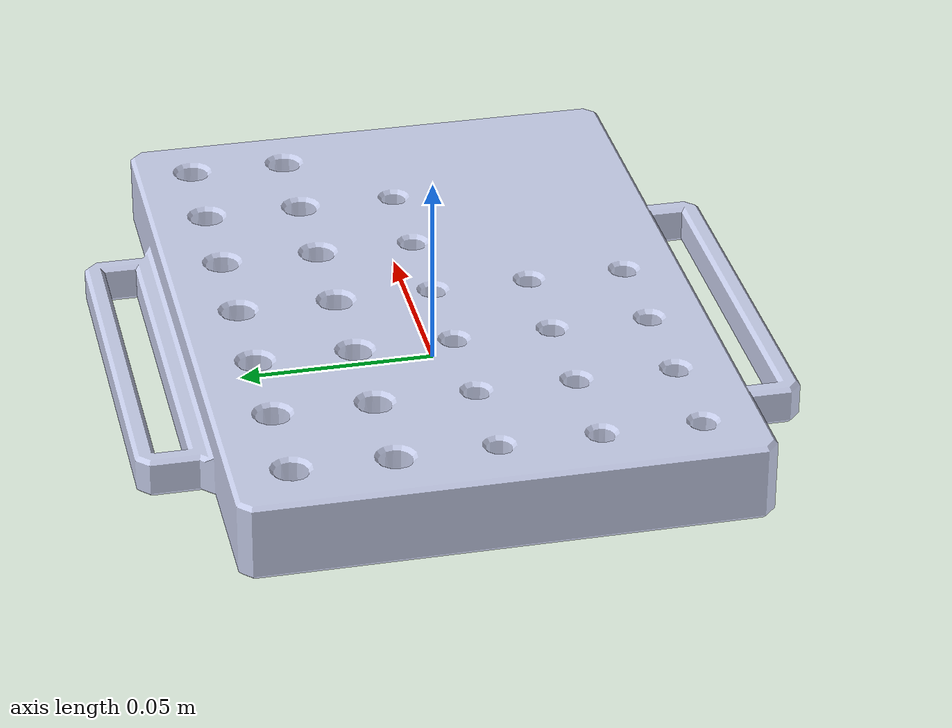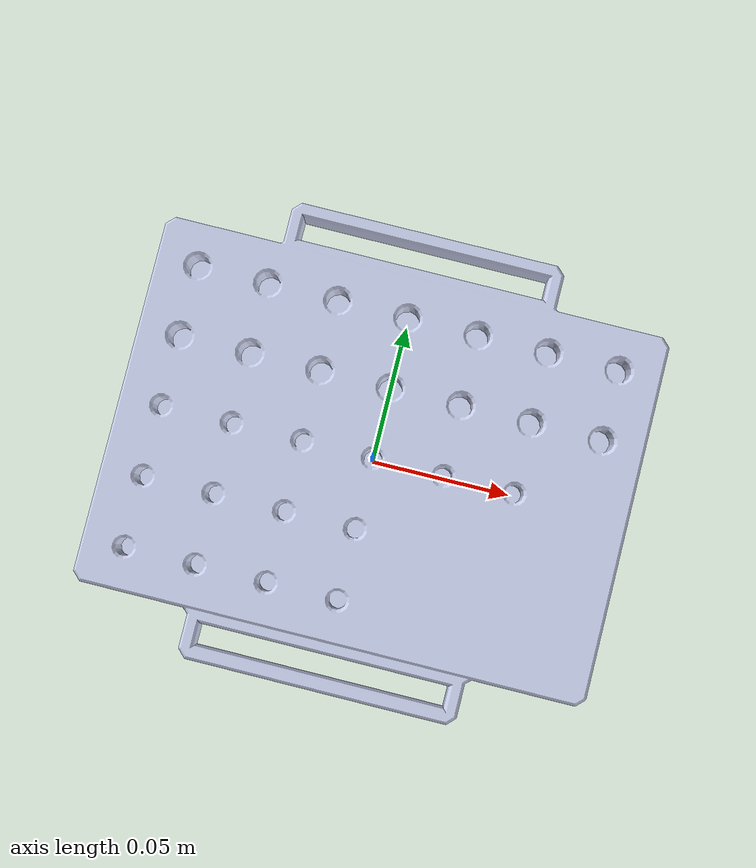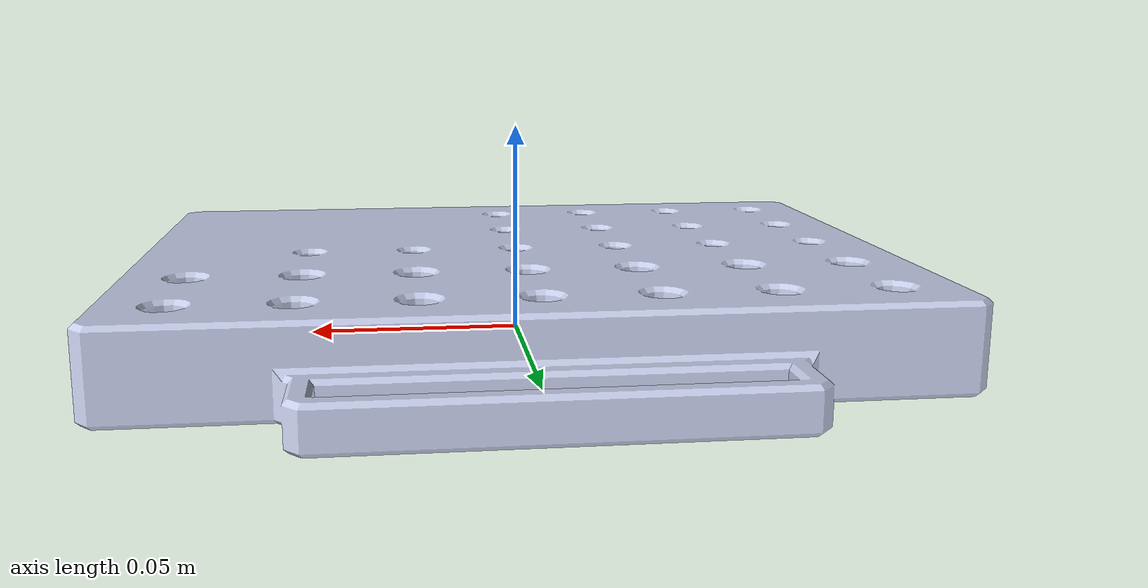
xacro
<?xml version="1.0"?>
<robot name="table_robot" xmlns:xacro="http://www.ros.org/wiki/xacro">
  <xacro:include filename="$(find env_setting)/urdf/pin_holder.SLDPRT.urdf" />

  <link name="world" />
  <joint name="world_table" type="fixed">
    <origin xyz="0.0 0.0 0.0" rpy="0 0 0" />
    <parent link="world"/>
    <child link="pin_holder.SLDPRT"/>
  </joint>
</robot>

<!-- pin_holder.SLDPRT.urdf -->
<robot
  name="pin_holder.SLDPRT">
  <link
    name="pin_holder.SLDPRT">
    <inertial>
      <origin
        xyz="0.00027071 -0.000426169999999999 0.0096375"
        rpy="0 0 0" />
      <mass
        value="0.47527" />
      <inertia
        ixx="0.00077064"
        ixy="7.0966E-07"
        ixz="3.8049E-06"
        iyy="0.0012629"
        iyz="1.10569999999995E-06"
        izz="0.0020021" />
    </inertial>
    <visual>
      <origin
        xyz="0 0 0"
        rpy="0 0 0" />
      <geometry>
        <mesh
          filename="package://env_setting/meshes/pin_holder.SLDPRT.STL" />
      </geometry>
      <material
        name="">
        <color
          rgba="0.79216 0.81961 0.93333 1" />
        <texture
          filename="package://env_setting/textures/" />
      </material>
    </visual>
    <collision>
      <origin
        xyz="0 0 0"
        rpy="0 0 0" />
      <geometry>
        <mesh
          filename="package://env_setting/meshes/pin_holder.SLDPRT.STL" />
      </geometry>
    </collision>
  </link>
  <gazebo reference="pin_holder.SLDPRT">
    <kp>1000000.0</kp>
    <kd>1.0</kd>
    <mu1>100000</mu1>
    <mu2>100000</mu2>
    <maxVel>0</maxVel>
    <minDepth>0.0001</minDepth>
  </gazebo>
</robot>
